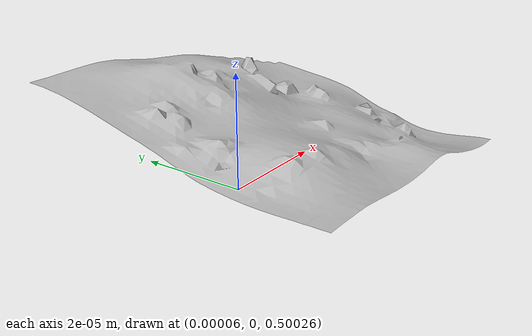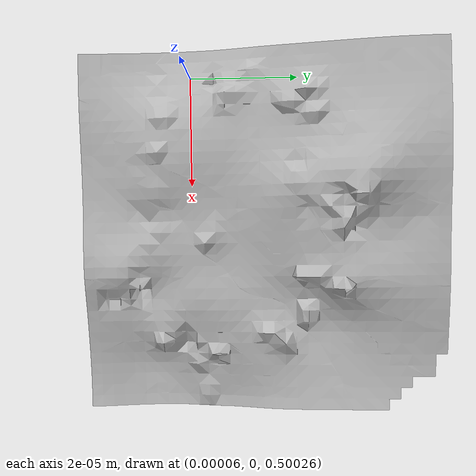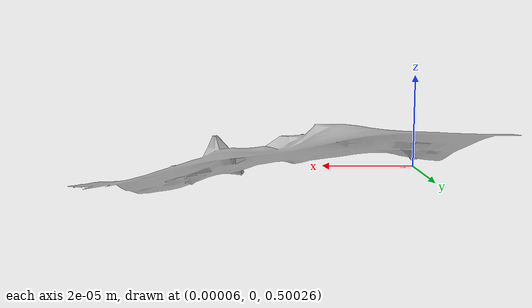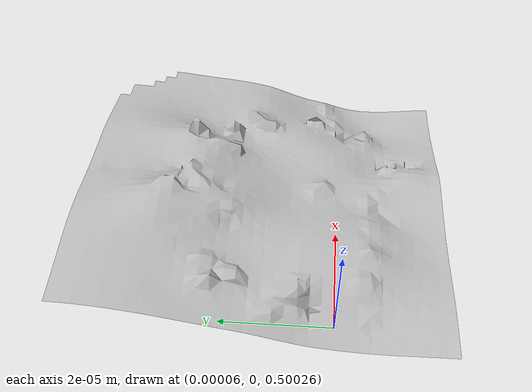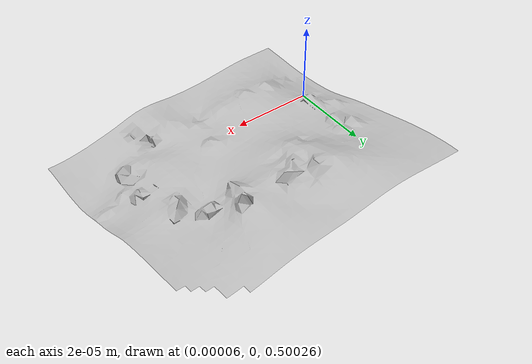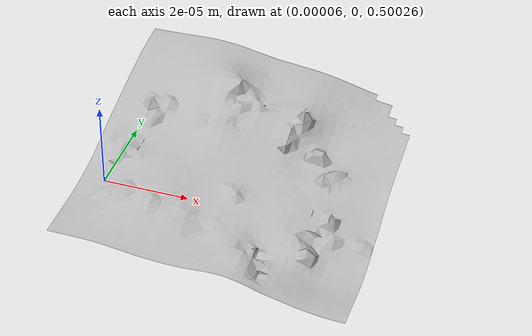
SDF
<?xml version="1.0"?>
<sdf version="1.6">
  <model name="my_model">
    <link name="base_link">
      <!-- 将初始位置的z坐标设置为0.5米 -->
      <pose>0 0 0.5 0 0 0</pose>
      <inertial>
        <mass>0.1024</mass>
        <inertia>
          <ixx>4.369e-5</ixx>
          <ixy>0</ixy>
          <ixz>0</ixz>
          <iyy>4.028e-5</iyy>
          <iyz>0</iyz>
          <izz>1.407e-5</izz>
        </inertia>
        <!-- 将质心的z坐标也上调至0.05米 -->
        <pose>0 0 0.05 0 0 0</pose>
      </inertial>
      <gravity>true</gravity>
      <self_collide>false</self_collide>
      <kinematic>false</kinematic>
      <visual name="visual">
        <geometry>
          <mesh>
            <uri>file:///home/robot/.gazebo/models/3Dreconstruction/meshes/reconstruction.stl</uri>
            <scale>0.00006 0.00006 0.00006</scale>
          </mesh>
        </geometry>
      </visual>
      <collision name="collision">
        <geometry>
          <mesh>
            <uri>file:///home/robot/.gazebo/models/3Dreconstruction/meshes/reconstruction.stl</uri>
            <scale>0.00006 0.00006 0.00006</scale>
          </mesh>
        </geometry>
      </collision>
    </link>
  </model>
</sdf>
